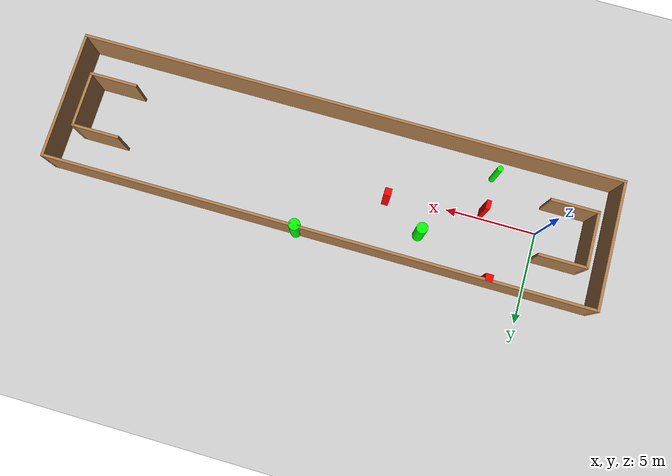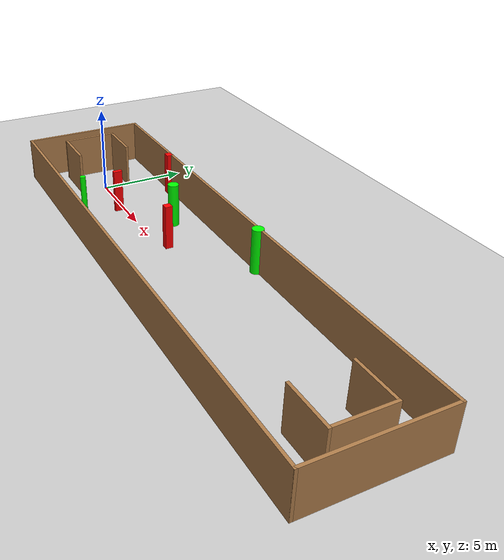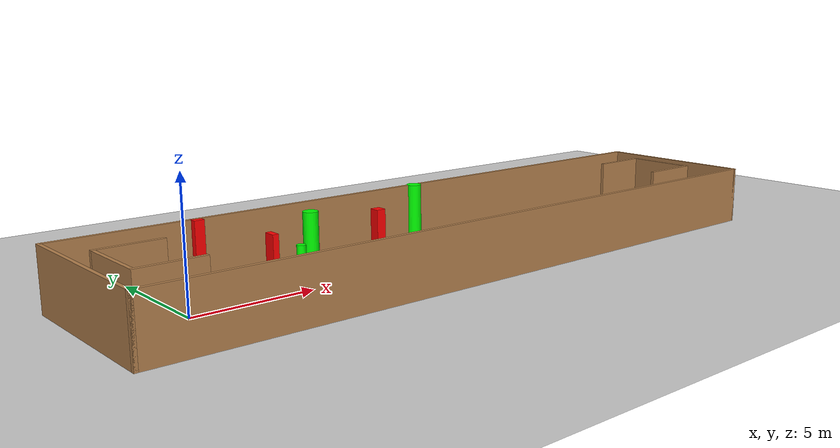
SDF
<sdf version="1.7">
 <world name="default">
  <light name="sun" type="directional">
   <pose>0 0 10 0 -0 0</pose>
   <diffuse>0.8 0.8 0.8 1</diffuse>
   <specular>0.2 0.2 0.2 1</specular>
   <attenuation>
    <range>1000</range>
    <constant>0.9</constant>
    <linear>0.01</linear>
    <quadratic>0.001</quadratic>
   </attenuation>
   <direction>-0.5 0.1 -0.9</direction>
   <spot><inner_angle>0</inner_angle><outer_angle>0</outer_angle><falloff>0</falloff></spot>
  </light>
  <model name="ground_plane">
   <static>1</static>
   <link name="link">
    <collision name="collision">
     <geometry><plane><normal>0 0 1</normal><size>100 100</size></plane></geometry>
     <surface>
      <contact><collide_bitmask>65535</collide_bitmask></contact>
      <friction><ode><mu>100</mu><mu2>50</mu2></ode></friction>
     </surface>
    </collision>
    <visual name="visual">
     <cast_shadows>0</cast_shadows>
     <geometry><plane><normal>0 0 1</normal><size>100 100</size></plane></geometry>
     <material>
      <script><uri>file://media/materials/scripts/gazebo.material</uri><name>Gazebo/Grey</name></script>
     </material>
    </visual>
   </link>
  </model>
  <gravity>0 0 -9.8</gravity>
  <magnetic_field>6e-06 2.3e-05 -4.2e-05</magnetic_field>
  <atmosphere type="adiabatic"/>
  <physics type="ode">
   <max_step_size>0.001</max_step_size>
   <real_time_factor>1</real_time_factor>
   <real_time_update_rate>1000</real_time_update_rate>
  </physics>
  <scene><ambient>0.4 0.4 0.4 1</ambient><background>0.7 0.7 0.7 1</background><shadows>1</shadows></scene>
  <spherical_coordinates>
   <surface_model>EARTH_WGS84</surface_model>
   <latitude_deg>0</latitude_deg>
   <longitude_deg>0</longitude_deg>
   <elevation>0</elevation>
   <heading_deg>0</heading_deg>
  </spherical_coordinates>
  <model name="my_base_walls">
   <link name="Wall_0">
    <collision name="Wall_0_Collision">
     <geometry><box><size>7.15 0.15 2.5</size></box></geometry>
     <pose>0 0 1.25 0 -0 0</pose>
    </collision>
    <visual name="Wall_0_Visual">
     <pose>0 0 1.25 0 -0 0</pose>
     <geometry><box><size>7.15 0.15 2.5</size></box></geometry>
     <material>
      <script><uri>file://media/materials/scripts/gazebo.material</uri><name>Gazebo/Wood</name></script>
      <ambient>1 1 1 1</ambient>
     </material>
     <meta><layer>0</layer></meta>
    </visual>
    <pose>-15 0 0 0 -0 1.5708</pose>
   </link>
   <link name="Wall_10">
    <collision name="Wall_10_Collision">
     <geometry><box><size>2.65 0.15 2.5</size></box></geometry>
     <pose>0 0 1.25 0 -0 0</pose>
    </collision>
    <visual name="Wall_10_Visual">
     <pose>0 0 1.25 0 -0 0</pose>
     <geometry><box><size>2.65 0.15 2.5</size></box></geometry>
     <material>
      <script><uri>file://media/materials/scripts/gazebo.material</uri><name>Gazebo/Wood</name></script>
      <ambient>1 1 1 1</ambient>
     </material>
     <meta><layer>0</layer></meta>
    </visual>
    <pose>-12.75 -1.5 0 0 -0 0</pose>
   </link>
   <link name="Wall_12">
    <collision name="Wall_12_Collision">
     <geometry><box><size>2.65 0.15 2.5</size></box></geometry>
     <pose>0 0 1.25 0 -0 0</pose>
    </collision>
    <visual name="Wall_12_Visual">
     <pose>0 0 1.25 0 -0 0</pose>
     <geometry><box><size>2.65 0.15 2.5</size></box></geometry>
     <material>
      <script><uri>file://media/materials/scripts/gazebo.material</uri><name>Gazebo/Wood</name></script>
      <ambient>1 1 1 1</ambient>
     </material>
     <meta><layer>0</layer></meta>
    </visual>
    <pose>-12.75 1.5 0 0 -0 0</pose>
   </link>
   <link name="Wall_14">
    <collision name="Wall_14_Collision">
     <geometry><box><size>3.15 0.15 2.5</size></box></geometry>
     <pose>0 0 1.25 0 -0 0</pose>
    </collision>
    <visual name="Wall_14_Visual">
     <pose>0 0 1.25 0 -0 0</pose>
     <geometry><box><size>3.15 0.15 2.5</size></box></geometry>
     <material>
      <script><uri>file://media/materials/scripts/gazebo.material</uri><name>Gazebo/Wood</name></script>
      <ambient>1 1 1 1</ambient>
     </material>
     <meta><layer>0</layer></meta>
    </visual>
    <pose>14 0 0 0 -0 -1.5708</pose>
   </link>
   <link name="Wall_15">
    <collision name="Wall_15_Collision">
     <geometry><box><size>2.65 0.15 2.5</size></box></geometry>
     <pose>0 0 1.25 0 -0 0</pose>
    </collision>
    <visual name="Wall_15_Visual">
     <pose>0 0 1.25 0 -0 0</pose>
     <geometry><box><size>2.65 0.15 2.5</size></box></geometry>
     <material>
      <script><uri>file://media/materials/scripts/gazebo.material</uri><name>Gazebo/Wood</name></script>
      <ambient>1 1 1 1</ambient>
     </material>
     <meta><layer>0</layer></meta>
    </visual>
    <pose>12.75 -1.5 0 0 -0 3.14159</pose>
   </link>
   <link name="Wall_17">
    <collision name="Wall_17_Collision">
     <geometry><box><size>2.65 0.15 2.5</size></box></geometry>
     <pose>0 0 1.25 0 -0 0</pose>
    </collision>
    <visual name="Wall_17_Visual">
     <pose>0 0 1.25 0 -0 0</pose>
     <geometry><box><size>2.65 0.15 2.5</size></box></geometry>
     <material>
      <script><uri>file://media/materials/scripts/gazebo.material</uri><name>Gazebo/Wood</name></script>
      <ambient>1 1 1 1</ambient>
     </material>
     <meta><layer>0</layer></meta>
    </visual>
    <pose>12.75 1.5 0 0 -0 3.14159</pose>
   </link>
   <link name="Wall_2">
    <collision name="Wall_2_Collision">
     <geometry><box><size>30.15 0.15 2.5</size></box></geometry>
     <pose>0 0 1.25 0 -0 0</pose>
    </collision>
    <visual name="Wall_2_Visual">
     <pose>0 0 1.25 0 -0 0</pose>
     <geometry><box><size>30.15 0.15 2.5</size></box></geometry>
     <material>
      <script><uri>file://media/materials/scripts/gazebo.material</uri><name>Gazebo/Wood</name></script>
      <ambient>1 1 1 1</ambient>
     </material>
     <meta><layer>0</layer></meta>
    </visual>
    <pose>-0 -3.5 0 0 -0 0</pose>
   </link>
   <link name="Wall_4">
    <collision name="Wall_4_Collision">
     <geometry><box><size>30.15 0.15 2.5</size></box></geometry>
     <pose>0 0 1.25 0 -0 0</pose>
    </collision>
    <visual name="Wall_4_Visual">
     <pose>0 0 1.25 0 -0 0</pose>
     <geometry><box><size>30.15 0.15 2.5</size></box></geometry>
     <material>
      <script><uri>file://media/materials/scripts/gazebo.material</uri><name>Gazebo/Wood</name></script>
      <ambient>1 1 1 1</ambient>
     </material>
     <meta><layer>0</layer></meta>
    </visual>
    <pose>-0 3.5 0 0 -0 0</pose>
   </link>
   <link name="Wall_6">
    <collision name="Wall_6_Collision">
     <geometry><box><size>7.15 0.15 2.5</size></box></geometry>
     <pose>0 0 1.25 0 -0 0</pose>
    </collision>
    <visual name="Wall_6_Visual">
     <pose>0 0 1.25 0 -0 0</pose>
     <geometry><box><size>7.15 0.15 2.5</size></box></geometry>
     <material>
      <script><uri>file://media/materials/scripts/gazebo.material</uri><name>Gazebo/Wood</name></script>
      <ambient>1 1 1 1</ambient>
     </material>
     <meta><layer>0</layer></meta>
    </visual>
    <pose>15 0 0 0 -0 -1.5708</pose>
   </link>
   <link name="Wall_9">
    <collision name="Wall_9_Collision">
     <geometry><box><size>3.15 0.15 2.5</size></box></geometry>
     <pose>0 0 1.25 0 -0 0</pose>
    </collision>
    <visual name="Wall_9_Visual">
     <pose>0 0 1.25 0 -0 0</pose>
     <geometry><box><size>3.15 0.15 2.5</size></box></geometry>
     <material>
      <script><uri>file://media/materials/scripts/gazebo.material</uri><name>Gazebo/Wood</name></script>
      <ambient>1 1 1 1</ambient>
     </material>
     <meta><layer>0</layer></meta>
    </visual>
    <pose>-14 0 0 0 -0 -1.5708</pose>
   </link>
   <static>1</static>
   <pose>11.5 0 0 0 -0 0</pose>
  </model>
  <model name="cylinder1">
   <static>1</static>
   <link name="link">
    <inertial>
     <mass>1</mass>
     <inertia><ixx>0.5</ixx><ixy>0</ixy><ixz>0</ixz><iyy>0.5</iyy><iyz>0</iyz><izz>1</izz></inertia>
    </inertial>
    <collision name="collision">
     <geometry><cylinder><radius>0.1608955161700679</radius><length>2.5</length></cylinder></geometry>
    </collision>
    <visual name="visual">
     <geometry><cylinder><radius>0.1608955161700679</radius><length>2.5</length></cylinder></geometry>
     <material>
      <ambient>0 1 0 1</ambient>
      <diffuse>0 1 0 1</diffuse>
      <specular>0.1 0.1 0.1 1</specular>
      <emissive>0 0 0 0</emissive>
     </material>
    </visual>
   </link>
   <pose>2.998781005489393 -2.3715212331691005 1.25 0 0 0</pose>
  </model>
  <model name="cylinder2">
   <static>1</static>
   <link name="link">
    <inertial>
     <mass>1</mass>
     <inertia><ixx>0.5</ixx><ixy>0</ixy><ixz>0</ixz><iyy>0.5</iyy><iyz>0</iyz><izz>1</izz></inertia>
    </inertial>
    <collision name="collision">
     <geometry><cylinder><radius>0.3071748699181839</radius><length>2.5</length></cylinder></geometry>
    </collision>
    <visual name="visual">
     <geometry><cylinder><radius>0.3071748699181839</radius><length>2.5</length></cylinder></geometry>
     <material>
      <ambient>0 1 0 1</ambient>
      <diffuse>0 1 0 1</diffuse>
      <specular>0.1 0.1 0.1 1</specular>
      <emissive>0 0 0 0</emissive>
     </material>
    </visual>
   </link>
   <pose>6.161355289879793 1.8119886079336256 1.25 0 0 0</pose>
  </model>
  <model name="cylinder3">
   <static>1</static>
   <link name="link">
    <inertial>
     <mass>1</mass>
     <inertia><ixx>0.5</ixx><ixy>0</ixy><ixz>0</ixz><iyy>0.5</iyy><iyz>0</iyz><izz>1</izz></inertia>
    </inertial>
    <collision name="collision">
     <geometry><cylinder><radius>0.3161524155880381</radius><length>2.5</length></cylinder></geometry>
    </collision>
    <visual name="visual">
     <geometry><cylinder><radius>0.3161524155880381</radius><length>2.5</length></cylinder></geometry>
     <material>
      <ambient>0 1 0 1</ambient>
      <diffuse>0 1 0 1</diffuse>
      <specular>0.1 0.1 0.1 1</specular>
      <emissive>0 0 0 0</emissive>
     </material>
    </visual>
   </link>
   <pose>12.614754366994264 3.4350698316914148 1.25 0 0 0</pose>
  </model>
  <model name="box1">
   <static>1</static>
   <link name="link">
    <inertial>
     <mass>1</mass>
     <inertia><ixx>0.083</ixx><ixy>0</ixy><ixz>0</ixz><iyy>0.083</iyy><iyz>0</iyz><izz>0.083</izz></inertia>
    </inertial>
    <collision name="collision">
     <geometry><box><size>0.41396602333802357 0.36564306336575575 2.5</size></box></geometry>
    </collision>
    <visual name="visual">
     <geometry><box><size>0.41396602333802357 0.36564306336575575 2.5</size></box></geometry>
     <material>
      <ambient>1 0 0 1</ambient>
      <diffuse>1 0 0 1</diffuse>
      <specular>0.1 0.1 0.1 1</specular>
      <emissive>0 0 0 0</emissive>
     </material>
    </visual>
    <sensor name="my_contact" type="contact">
     <contact><collision>box_collision</collision><topic>__default_topic__</topic></contact>
    </sensor>
   </link>
   <pose>2.2178845374017477 3.3575653700411534 1.25 0 0 0</pose>
  </model>
  <model name="box2">
   <static>1</static>
   <link name="link">
    <inertial>
     <mass>1</mass>
     <inertia><ixx>0.083</ixx><ixy>0</ixy><ixz>0</ixz><iyy>0.083</iyy><iyz>0</iyz><izz>0.083</izz></inertia>
    </inertial>
    <collision name="collision">
     <geometry><box><size>0.385773557210612 0.4176913823873664 2.5</size></box></geometry>
    </collision>
    <visual name="visual">
     <geometry><box><size>0.385773557210612 0.4176913823873664 2.5</size></box></geometry>
     <material>
      <ambient>1 0 0 1</ambient>
      <diffuse>1 0 0 1</diffuse>
      <specular>0.1 0.1 0.1 1</specular>
      <emissive>0 0 0 0</emissive>
     </material>
    </visual>
    <sensor name="my_contact" type="contact">
     <contact><collision>box_collision</collision><topic>__default_topic__</topic></contact>
    </sensor>
   </link>
   <pose>8.364430372553889 0.4462953085222163 1.25 0 0 0</pose>
  </model>
  <model name="box3">
   <static>1</static>
   <link name="link">
    <inertial>
     <mass>1</mass>
     <inertia><ixx>0.083</ixx><ixy>0</ixy><ixz>0</ixz><iyy>0.083</iyy><iyz>0</iyz><izz>0.083</izz></inertia>
    </inertial>
    <collision name="collision">
     <geometry><box><size>0.23988232719313293 0.49332295488040845 2.5</size></box></geometry>
    </collision>
    <visual name="visual">
     <geometry><box><size>0.23988232719313293 0.49332295488040845 2.5</size></box></geometry>
     <material>
      <ambient>1 0 0 1</ambient>
      <diffuse>1 0 0 1</diffuse>
      <specular>0.1 0.1 0.1 1</specular>
      <emissive>0 0 0 0</emissive>
     </material>
    </visual>
    <sensor name="my_contact" type="contact">
     <contact><collision>box_collision</collision><topic>__default_topic__</topic></contact>
    </sensor>
   </link>
   <pose>3.137093200503724 -0.32971570104488457 1.25 0 0 0</pose>
  </model>
 </world>
</sdf>
